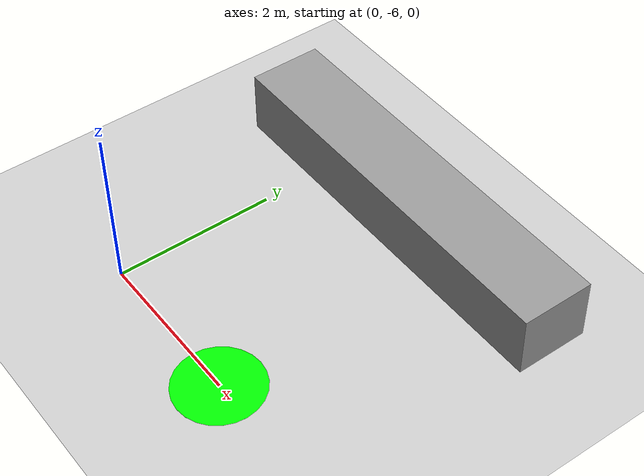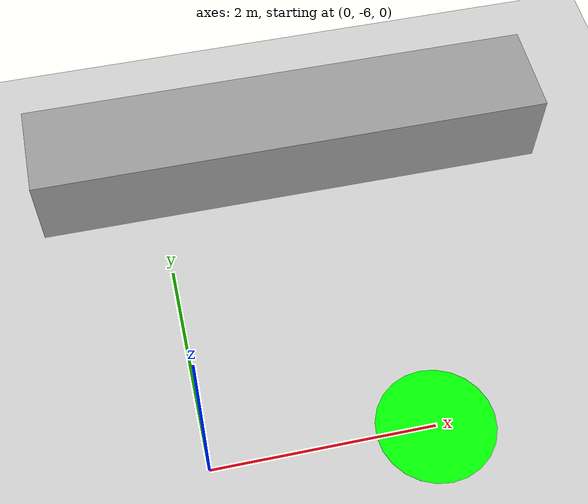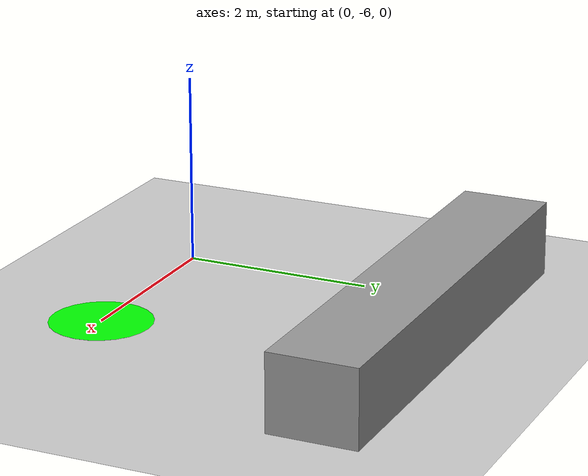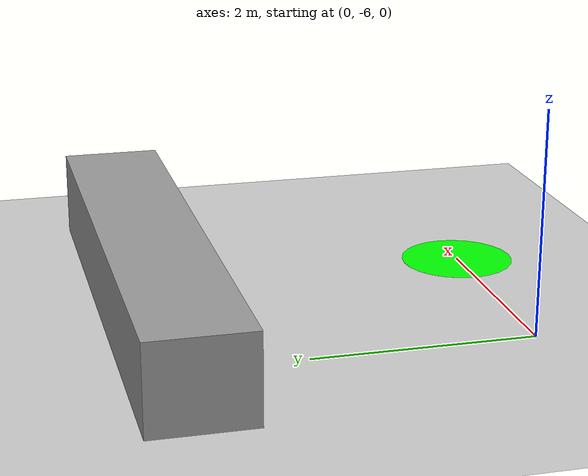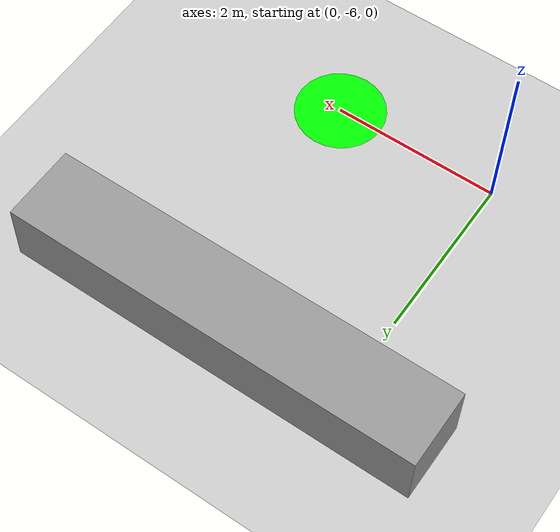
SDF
<sdf version="1.7">
 <world name="default">
  <light name="sun" type="directional">
   <pose>0 0 10 0 -0 0</pose>
   <diffuse>0.8 0.8 0.8 1</diffuse>
   <specular>0.2 0.2 0.2 1</specular>
   <attenuation>
    <range>1000</range>
    <constant>0.9</constant>
    <linear>0.01</linear>
    <quadratic>0.001</quadratic>
   </attenuation>
   <direction>-0.5 0.1 -0.9</direction>
   <spot><inner_angle>0</inner_angle><outer_angle>0</outer_angle><falloff>0</falloff></spot>
  </light>
  <model name="ground_plane">
   <static>1</static>
   <link name="link">
    <collision name="collision">
     <geometry><plane><normal>0 0 1</normal><size>100 100</size></plane></geometry>
     <surface><friction><ode><mu>100</mu><mu2>50</mu2></ode></friction></surface>
    </collision>
    <visual name="visual">
     <cast_shadows>0</cast_shadows>
     <geometry><plane><normal>0 0 1</normal><size>100 100</size></plane></geometry>
     <material>
      <script><uri>file://media/materials/scripts/gazebo.material</uri><name>Gazebo/Grey</name></script>
     </material>
    </visual>
   </link>
  </model>
  <gravity>0 0 -9.8</gravity>
  <magnetic_field>6e-06 2.3e-05 -4.2e-05</magnetic_field>
  <atmosphere type="adiabatic"/>
  <physics type="ode">
   <max_step_size>0.001</max_step_size>
   <real_time_factor>1</real_time_factor>
   <real_time_update_rate>1000</real_time_update_rate>
  </physics>
  <scene><ambient>0.4 0.4 0.4 1</ambient><background>0.7 0.7 0.7 1</background><shadows>1</shadows></scene>
  <spherical_coordinates>
   <surface_model>EARTH_WGS84</surface_model>
   <latitude_deg>0</latitude_deg>
   <longitude_deg>0</longitude_deg>
   <elevation>0</elevation>
   <heading_deg>0</heading_deg>
  </spherical_coordinates>
  <model name="unit_box">
   <pose>1.31541 -2.88856 0.392052 0 0.000896 -2.4e-05</pose>
   <link name="link">
    <inertial>
     <mass>1</mass>
     <inertia>
      <ixx>0.166667</ixx>
      <ixy>0</ixy>
      <ixz>0</ixz>
      <iyy>0.166667</iyy>
      <iyz>0</iyz>
      <izz>0.166667</izz>
     </inertia>
    </inertial>
    <collision name="collision"><geometry><box><size>4.92715 0.909512 0.78852</size></box></geometry></collision>
    <visual name="visual">
     <geometry><box><size>4.92715 0.909512 0.78852</size></box></geometry>
     <material>
      <script><name>Gazebo/Grey</name><uri>file://media/materials/scripts/gazebo.material</uri></script>
     </material>
    </visual>
   </link>
  </model>
  <model name="unit_cylinder_1">
   <link name="link">
    <inertial>
     <mass>1</mass>
     <inertia><ixx>0.145833</ixx><ixy>0</ixy><ixz>0</ixz><iyy>0.145833</iyy><iyz>0</iyz><izz>0.125</izz></inertia>
    </inertial>
    <collision name="collision">
     <geometry><cylinder><radius>0.53358</radius><length>0.00028059</length></cylinder></geometry>
    </collision>
    <visual name="visual">
     <geometry><cylinder><radius>0.53358</radius><length>0.000308649</length></cylinder></geometry>
     <material>
      <ambient>0 1 0 1</ambient>
      <diffuse>0 1 0 1</diffuse>
      <specular>0 1 0 1</specular>
      <emissive>0 1 0 1</emissive>
     </material>
    </visual>
   </link>
   <enable_wind>1</enable_wind>
   <pose>2 -6 0.00014 0 -0 0</pose>
   <scale>1.06716 1.06716 0.028059</scale>
  </model>
 </world>
</sdf>
